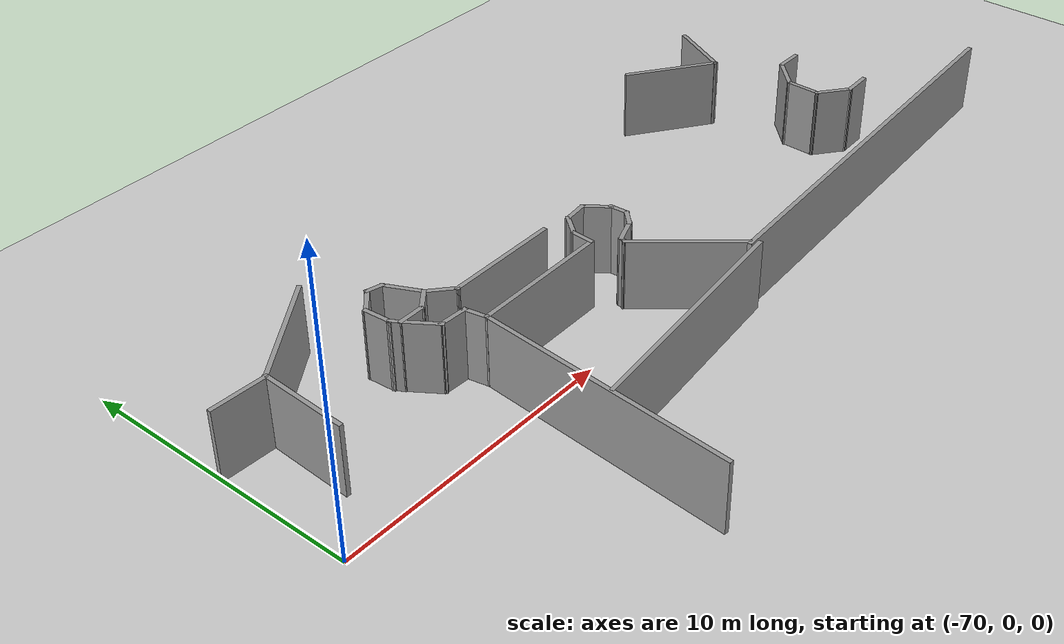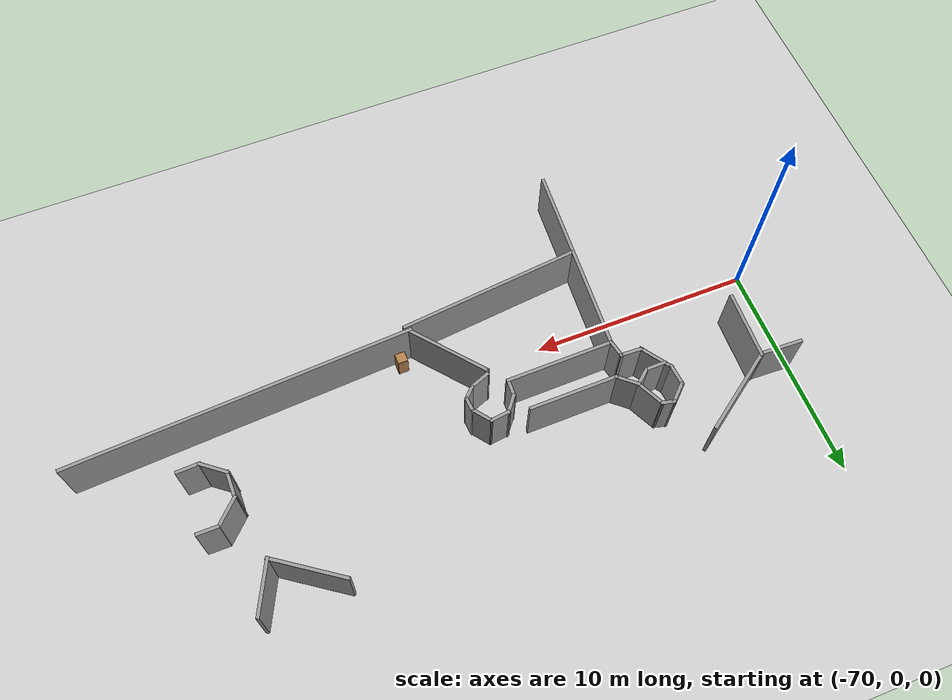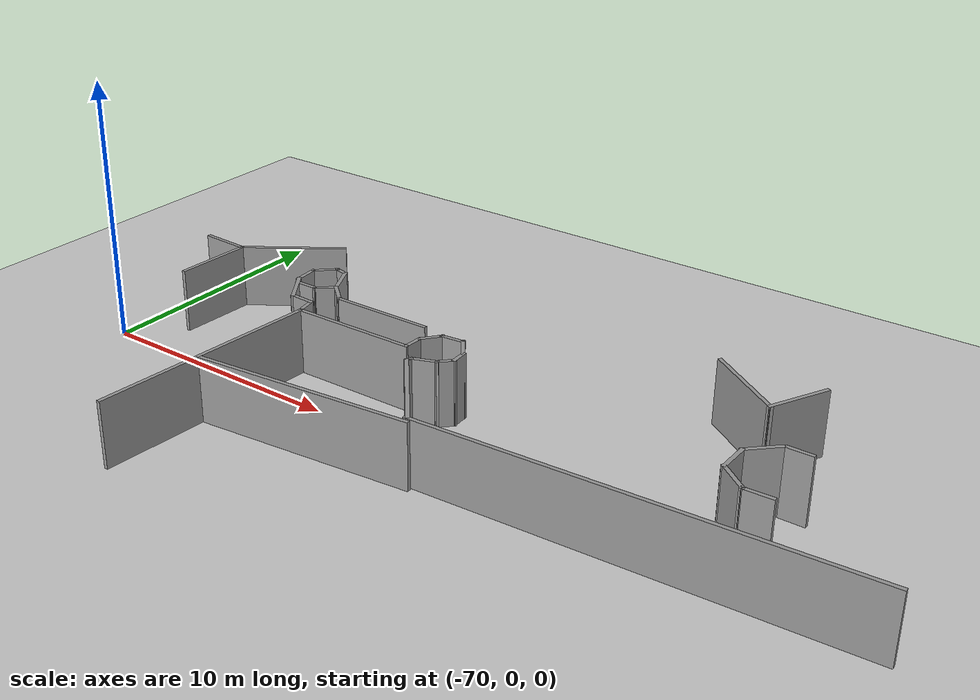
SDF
<sdf version="1.6">
 <world name="default">
  <model name="ground_plane">
   <static>1</static>
   <link name="link">
    <collision name="collision">
     <geometry><plane><normal>0 0 1</normal><size>100 100</size></plane></geometry>
     <surface><friction><ode><mu>100</mu><mu2>50</mu2></ode></friction></surface>
    </collision>
    <visual name="visual">
     <cast_shadows>0</cast_shadows>
     <geometry><plane><normal>0 0 1</normal><size>100 100</size></plane></geometry>
     <material>
      <script><uri>file://media/materials/scripts/gazebo.material</uri><name>Gazebo/Grey</name></script>
     </material>
    </visual>
   </link>
  </model>
  <model name="mall_new_reduce_size">
   <pose>-6.8092 7.5529 0 0 -0 0</pose>
   <link name="Wall_316">
    <collision name="Wall_316_Collision">
     <geometry><box><size>15.666 0.15 2.5</size></box></geometry>
     <pose>0 0 1.25 0 -0 0</pose>
    </collision>
    <visual name="Wall_316_Visual">
     <pose>0 0 1.25 0 -0 0</pose>
     <geometry><box><size>15.666 0.15 2.5</size></box></geometry>
     <material>
      <script><uri>file://media/materials/scripts/gazebo.material</uri><name>Gazebo/Grey</name></script>
      <ambient>1 1 1 1</ambient>
     </material>
     <meta><layer>0</layer></meta>
    </visual>
    <pose>-40.0804 -8.94499 0 0 -0 0.056231</pose>
   </link>
   <link name="Wall_344">
    <collision name="Wall_344_Collision">
     <geometry><box><size>1 0.15 2.5</size></box></geometry>
     <pose>0 0 1.25 0 -0 0</pose>
    </collision>
    <visual name="Wall_344_Visual">
     <pose>0 0 1.25 0 -0 0</pose>
     <geometry><box><size>1 0.15 2.5</size></box></geometry>
     <material>
      <script><uri>file://media/materials/scripts/gazebo.material</uri><name>Gazebo/Grey</name></script>
      <ambient>1 1 1 1</ambient>
     </material>
     <meta><layer>0</layer></meta>
    </visual>
    <pose>-37.269 -3.87943 0 0 -0 0</pose>
   </link>
   <link name="Wall_348">
    <collision name="Wall_348_Collision">
     <geometry><box><size>1.10725 0.15 2.5</size></box></geometry>
     <pose>0 0 1.25 0 -0 0</pose>
    </collision>
    <visual name="Wall_348_Visual">
     <pose>0 0 1.25 0 -0 0</pose>
     <geometry><box><size>1.10725 0.15 2.5</size></box></geometry>
     <material>
      <script><uri>file://media/materials/scripts/gazebo.material</uri><name>Gazebo/Grey</name></script>
      <ambient>1 1 1 1</ambient>
     </material>
     <meta><layer>0</layer></meta>
    </visual>
    <pose>-37.2547 -6.70987 0 0 -0 -3.10635</pose>
   </link>
   <link name="Wall_349">
    <collision name="Wall_349_Collision">
     <geometry><box><size>1.3639 0.15 2.5</size></box></geometry>
     <pose>0 0 1.25 0 -0 0</pose>
    </collision>
    <visual name="Wall_349_Visual">
     <pose>0 0 1.25 0 -0 0</pose>
     <geometry><box><size>1.3639 0.15 2.5</size></box></geometry>
     <material>
      <script><uri>file://media/materials/scripts/gazebo.material</uri><name>Gazebo/Grey</name></script>
      <ambient>1 1 1 1</ambient>
     </material>
     <meta><layer>0</layer></meta>
    </visual>
    <pose>-38.2094 -6.34212 0 0 -0 2.47312</pose>
   </link>
   <link name="Wall_350">
    <collision name="Wall_350_Collision">
     <geometry><box><size>1.28376 0.15 2.5</size></box></geometry>
     <pose>0 0 1.25 0 -0 0</pose>
    </collision>
    <visual name="Wall_350_Visual">
     <pose>0 0 1.25 0 -0 0</pose>
     <geometry><box><size>1.28376 0.15 2.5</size></box></geometry>
     <material>
      <script><uri>file://media/materials/scripts/gazebo.material</uri><name>Gazebo/Grey</name></script>
      <ambient>1 1 1 1</ambient>
     </material>
     <meta><layer>0</layer></meta>
    </visual>
    <pose>-38.673 -5.39908 0 0 -0 1.56336</pose>
   </link>
   <link name="Wall_351">
    <collision name="Wall_351_Collision">
     <geometry><box><size>1.42952 0.15 2.5</size></box></geometry>
     <pose>0 0 1.25 0 -0 0</pose>
    </collision>
    <visual name="Wall_351_Visual">
     <pose>0 0 1.25 0 -0 0</pose>
     <geometry><box><size>1.42952 0.15 2.5</size></box></geometry>
     <material>
      <script><uri>file://media/materials/scripts/gazebo.material</uri><name>Gazebo/Grey</name></script>
      <ambient>1 1 1 1</ambient>
     </material>
     <meta><layer>0</layer></meta>
    </visual>
    <pose>-38.2264 -4.36991 0 0 -0 0.78871</pose>
   </link>
   <link name="Wall_366">
    <collision name="Wall_366_Collision">
     <geometry><box><size>3.45516 0.15 2.5</size></box></geometry>
     <pose>0 0 1.25 0 -0 0</pose>
    </collision>
    <visual name="Wall_366_Visual">
     <pose>0 0 1.25 0 -0 0</pose>
     <geometry><box><size>3.45516 0.15 2.5</size></box></geometry>
     <material>
      <script><uri>file://media/materials/scripts/gazebo.material</uri><name>Gazebo/Grey</name></script>
      <ambient>1 1 1 1</ambient>
     </material>
     <meta><layer>0</layer></meta>
    </visual>
    <pose>-40.4877 -0.988988 0 0 -0 -0.613962</pose>
   </link>
   <link name="Wall_367">
    <collision name="Wall_367_Collision">
     <geometry><box><size>2.46444 0.15 2.5</size></box></geometry>
     <pose>0 0 1.25 0 -0 0</pose>
    </collision>
    <visual name="Wall_367_Visual">
     <pose>0 0 1.25 0 -0 0</pose>
     <geometry><box><size>2.46444 0.15 2.5</size></box></geometry>
     <material>
      <script><uri>file://media/materials/scripts/gazebo.material</uri><name>Gazebo/Grey</name></script>
      <ambient>1 1 1 1</ambient>
     </material>
     <meta><layer>0</layer></meta>
    </visual>
    <pose>-38.6407 -0.899676 0 0 -0 1.11954</pose>
   </link>
   <link name="Wall_401">
    <collision name="Wall_401_Collision">
     <geometry><box><size>8.88079 0.15 2.5</size></box></geometry>
     <pose>0 0 1.25 0 -0 0</pose>
    </collision>
    <visual name="Wall_401_Visual">
     <pose>0 0 1.25 0 -0 0</pose>
     <geometry><box><size>8.88079 0.15 2.5</size></box></geometry>
     <material>
      <script><uri>file://media/materials/scripts/gazebo.material</uri><name>Gazebo/Grey</name></script>
      <ambient>1 1 1 1</ambient>
     </material>
     <meta><layer>0</layer></meta>
    </visual>
    <pose>-55.8835 -10.0474 0 0 -0 1.50433</pose>
   </link>
   <link name="Wall_402">
    <collision name="Wall_402_Collision">
     <geometry><box><size>0.897348 0.15 2.5</size></box></geometry>
     <pose>0 0 1.25 0 -0 0</pose>
    </collision>
    <visual name="Wall_402_Visual">
     <pose>0 0 1.25 0 -0 0</pose>
     <geometry><box><size>0.897348 0.15 2.5</size></box></geometry>
     <material>
      <script><uri>file://media/materials/scripts/gazebo.material</uri><name>Gazebo/Grey</name></script>
      <ambient>1 1 1 1</ambient>
     </material>
     <meta><layer>0</layer></meta>
    </visual>
    <pose>-55.6756 -5.31366 0 0 -0 1.76181</pose>
   </link>
   <link name="Wall_403">
    <collision name="Wall_403_Collision">
     <geometry><box><size>1.05205 0.15 2.5</size></box></geometry>
     <pose>0 0 1.25 0 -0 0</pose>
    </collision>
    <visual name="Wall_403_Visual">
     <pose>0 0 1.25 0 -0 0</pose>
     <geometry><box><size>1.05205 0.15 2.5</size></box></geometry>
     <material>
      <script><uri>file://media/materials/scripts/gazebo.material</uri><name>Gazebo/Grey</name></script>
      <ambient>1 1 1 1</ambient>
     </material>
     <meta><layer>0</layer></meta>
    </visual>
    <pose>-56.1975 -4.94175 0 0 -0 3.09776</pose>
   </link>
   <link name="Wall_404">
    <collision name="Wall_404_Collision">
     <geometry><box><size>1.6486 0.15 2.5</size></box></geometry>
     <pose>0 0 1.25 0 -0 0</pose>
    </collision>
    <visual name="Wall_404_Visual">
     <pose>0 0 1.25 0 -0 0</pose>
     <geometry><box><size>1.6486 0.15 2.5</size></box></geometry>
     <material>
      <script><uri>file://media/materials/scripts/gazebo.material</uri><name>Gazebo/Grey</name></script>
      <ambient>1 1 1 1</ambient>
     </material>
     <meta><layer>0</layer></meta>
    </visual>
    <pose>-57.0705 -4.31764 0 0 -0 2.16924</pose>
   </link>
   <link name="Wall_405">
    <collision name="Wall_405_Collision">
     <geometry><box><size>1.04728 0.15 2.5</size></box></geometry>
     <pose>0 0 1.25 0 -0 0</pose>
    </collision>
    <visual name="Wall_405_Visual">
     <pose>0 0 1.25 0 -0 0</pose>
     <geometry><box><size>1.04728 0.15 2.5</size></box></geometry>
     <material>
      <script><uri>file://media/materials/scripts/gazebo.material</uri><name>Gazebo/Grey</name></script>
      <ambient>1 1 1 1</ambient>
     </material>
     <meta><layer>0</layer></meta>
    </visual>
    <pose>-57.5295 -3.26618 0 0 -0 1.65307</pose>
   </link>
   <link name="Wall_406">
    <collision name="Wall_406_Collision">
     <geometry><box><size>1.06244 0.15 2.5</size></box></geometry>
     <pose>0 0 1.25 0 -0 0</pose>
    </collision>
    <visual name="Wall_406_Visual">
     <pose>0 0 1.25 0 -0 0</pose>
     <geometry><box><size>1.06244 0.15 2.5</size></box></geometry>
     <material>
      <script><uri>file://media/materials/scripts/gazebo.material</uri><name>Gazebo/Grey</name></script>
      <ambient>1 1 1 1</ambient>
     </material>
     <meta><layer>0</layer></meta>
    </visual>
    <pose>-57.2204 -2.50531 0 0 -0 0.758329</pose>
   </link>
   <link name="Wall_407">
    <collision name="Wall_407_Collision">
     <geometry><box><size>0.639841 0.15 2.5</size></box></geometry>
     <pose>0 0 1.25 0 -0 0</pose>
    </collision>
    <visual name="Wall_407_Visual">
     <pose>0 0 1.25 0 -0 0</pose>
     <geometry><box><size>0.639841 0.15 2.5</size></box></geometry>
     <material>
      <script><uri>file://media/materials/scripts/gazebo.material</uri><name>Gazebo/Grey</name></script>
      <ambient>1 1 1 1</ambient>
     </material>
     <meta><layer>0</layer></meta>
    </visual>
    <pose>-56.6521 -2.25288 0 0 -0 -0.253027</pose>
   </link>
   <link name="Wall_408">
    <collision name="Wall_408_Collision">
     <geometry><box><size>1.42721 0.15 2.5</size></box></geometry>
     <pose>0 0 1.25 0 -0 0</pose>
    </collision>
    <visual name="Wall_408_Visual">
     <pose>0 0 1.25 0 -0 0</pose>
     <geometry><box><size>1.42721 0.15 2.5</size></box></geometry>
     <material>
      <script><uri>file://media/materials/scripts/gazebo.material</uri><name>Gazebo/Grey</name></script>
      <ambient>1 1 1 1</ambient>
     </material>
     <meta><layer>0</layer></meta>
    </visual>
    <pose>-56.1375 -2.87459 0 0 -0 -1.12122</pose>
   </link>
   <link name="Wall_409">
    <collision name="Wall_409_Collision">
     <geometry><box><size>1.12501 0.15 2.5</size></box></geometry>
     <pose>0 0 1.25 0 -0 0</pose>
    </collision>
    <visual name="Wall_409_Visual">
     <pose>0 0 1.25 0 -0 0</pose>
     <geometry><box><size>1.12501 0.15 2.5</size></box></geometry>
     <material>
      <script><uri>file://media/materials/scripts/gazebo.material</uri><name>Gazebo/Grey</name></script>
      <ambient>1 1 1 1</ambient>
     </material>
     <meta><layer>0</layer></meta>
    </visual>
    <pose>-55.4949 -3.78767 0 0 -0 -0.724728</pose>
   </link>
   <link name="Wall_411">
    <collision name="Wall_411_Collision">
     <geometry><box><size>4.04883 0.15 2.5</size></box></geometry>
     <pose>0 0 1.25 0 -0 0</pose>
    </collision>
    <visual name="Wall_411_Visual">
     <pose>0 0 1.25 0 -0 0</pose>
     <geometry><box><size>4.04883 0.15 2.5</size></box></geometry>
     <material>
      <script><uri>file://media/materials/scripts/gazebo.material</uri><name>Gazebo/Grey</name></script>
      <ambient>1 1 1 1</ambient>
     </material>
     <meta><layer>0</layer></meta>
    </visual>
    <pose>-53.1806 -4.10085 0 0 -0 0.010101</pose>
   </link>
   <link name="Wall_417">
    <collision name="Wall_417_Collision">
     <geometry><box><size>0.945041 0.15 2.5</size></box></geometry>
     <pose>0 0 1.25 0 -0 0</pose>
    </collision>
    <visual name="Wall_417_Visual">
     <pose>0 0 1.25 0 -0 0</pose>
     <geometry><box><size>0.945041 0.15 2.5</size></box></geometry>
     <material>
      <script><uri>file://media/materials/scripts/gazebo.material</uri><name>Gazebo/Grey</name></script>
      <ambient>1 1 1 1</ambient>
     </material>
     <meta><layer>0</layer></meta>
    </visual>
    <pose>-56.1664 -3.71764 0 0 -0 -2.4512</pose>
   </link>
   <link name="Wall_418">
    <collision name="Wall_418_Collision">
     <geometry><box><size>0.981722 0.15 2.5</size></box></geometry>
     <pose>0 0 1.25 0 -0 0</pose>
    </collision>
    <visual name="Wall_418_Visual">
     <pose>0 0 1.25 0 -0 0</pose>
     <geometry><box><size>0.981722 0.15 2.5</size></box></geometry>
     <material>
      <script><uri>file://media/materials/scripts/gazebo.material</uri><name>Gazebo/Grey</name></script>
      <ambient>1 1 1 1</ambient>
     </material>
     <meta><layer>0</layer></meta>
    </visual>
    <pose>-56.8887 -3.96587 0 0 -0 -3.13011</pose>
   </link>
   <link name="Wall_427">
    <collision name="Wall_427_Collision">
     <geometry><box><size>3.12833 0.15 2.5</size></box></geometry>
     <pose>0 0 1.25 0 -0 0</pose>
    </collision>
    <visual name="Wall_427_Visual">
     <pose>0 0 1.25 0 -0 0</pose>
     <geometry><box><size>3.12833 0.15 2.5</size></box></geometry>
     <material>
      <script><uri>file://media/materials/scripts/gazebo.material</uri><name>Gazebo/Grey</name></script>
      <ambient>1 1 1 1</ambient>
     </material>
     <meta><layer>0</layer></meta>
    </visual>
    <pose>-61.3717 -4.31042 0 0 -0 1.53172</pose>
   </link>
   <link name="Wall_428">
    <collision name="Wall_428_Collision">
     <geometry><box><size>4.18793 0.15 2.5</size></box></geometry>
     <pose>0 0 1.25 0 -0 0</pose>
    </collision>
    <visual name="Wall_428_Visual">
     <pose>0 0 1.25 0 -0 0</pose>
     <geometry><box><size>4.18793 0.15 2.5</size></box></geometry>
     <material>
      <script><uri>file://media/materials/scripts/gazebo.material</uri><name>Gazebo/Grey</name></script>
      <ambient>1 1 1 1</ambient>
     </material>
     <meta><layer>0</layer></meta>
    </visual>
    <pose>-59.6593 -1.6746 0 0 -0 0.610537</pose>
   </link>
   <link name="Wall_431">
    <collision name="Wall_431_Collision">
     <geometry><box><size>1.99069 0.15 2.5</size></box></geometry>
     <pose>0 0 1.25 0 -0 0</pose>
    </collision>
    <visual name="Wall_431_Visual">
     <pose>0 0 1.25 0 -0 0</pose>
     <geometry><box><size>1.99069 0.15 2.5</size></box></geometry>
     <material>
      <script><uri>file://media/materials/scripts/gazebo.material</uri><name>Gazebo/Grey</name></script>
      <ambient>1 1 1 1</ambient>
     </material>
     <meta><layer>0</layer></meta>
    </visual>
    <pose>-62.246 -2.82159 0 0 -0 -0.042156</pose>
   </link>
   <link name="Wall_434">
    <collision name="Wall_434_Collision">
     <geometry><box><size>8.39063 0.15 2.5</size></box></geometry>
     <pose>0 0 1.25 0 -0 0</pose>
    </collision>
    <visual name="Wall_434_Visual">
     <pose>0 0 1.25 0 -0 0</pose>
     <geometry><box><size>8.39063 0.15 2.5</size></box></geometry>
     <material>
      <script><uri>file://media/materials/scripts/gazebo.material</uri><name>Gazebo/Grey</name></script>
      <ambient>1 1 1 1</ambient>
     </material>
     <meta><layer>0</layer></meta>
    </visual>
    <pose>-51.7356 -9.99206 0 0 -0 0.100443</pose>
   </link>
   <link name="Wall_437">
    <collision name="Wall_437_Collision">
     <geometry><box><size>4.93367 0.15 2.5</size></box></geometry>
     <pose>0 0 1.25 0 -0 0</pose>
    </collision>
    <visual name="Wall_437_Visual">
     <pose>0 0 1.25 0 -0 0</pose>
     <geometry><box><size>4.93367 0.15 2.5</size></box></geometry>
     <material>
      <script><uri>file://media/materials/scripts/gazebo.material</uri><name>Gazebo/Grey</name></script>
      <ambient>1 1 1 1</ambient>
     </material>
     <meta><layer>0</layer></meta>
    </visual>
    <pose>-53.2131 -5.64679 0 0 -0 0.01411</pose>
   </link>
   <link name="Wall_438">
    <collision name="Wall_438_Collision">
     <geometry><box><size>0.856294 0.15 2.5</size></box></geometry>
     <pose>0 0 1.25 0 -0 0</pose>
    </collision>
    <visual name="Wall_438_Visual">
     <pose>0 0 1.25 0 -0 0</pose>
     <geometry><box><size>0.856294 0.15 2.5</size></box></geometry>
     <material>
      <script><uri>file://media/materials/scripts/gazebo.material</uri><name>Gazebo/Grey</name></script>
      <ambient>1 1 1 1</ambient>
     </material>
     <meta><layer>0</layer></meta>
    </visual>
    <pose>-50.8031 -5.24109 0 0 -0 1.51867</pose>
   </link>
   <link name="Wall_439">
    <collision name="Wall_439_Collision">
     <geometry><box><size>0.969231 0.15 2.5</size></box></geometry>
     <pose>0 0 1.25 0 -0 0</pose>
    </collision>
    <visual name="Wall_439_Visual">
     <pose>0 0 1.25 0 -0 0</pose>
     <geometry><box><size>0.969231 0.15 2.5</size></box></geometry>
     <material>
      <script><uri>file://media/materials/scripts/gazebo.material</uri><name>Gazebo/Grey</name></script>
      <ambient>1 1 1 1</ambient>
     </material>
     <meta><layer>0</layer></meta>
    </visual>
    <pose>-50.5308 -4.57665 0 0 -0 0.902175</pose>
   </link>
   <link name="Wall_440">
    <collision name="Wall_440_Collision">
     <geometry><box><size>0.946307 0.15 2.5</size></box></geometry>
     <pose>0 0 1.25 0 -0 0</pose>
    </collision>
    <visual name="Wall_440_Visual">
     <pose>0 0 1.25 0 -0 0</pose>
     <geometry><box><size>0.946307 0.15 2.5</size></box></geometry>
     <material>
      <script><uri>file://media/materials/scripts/gazebo.material</uri><name>Gazebo/Grey</name></script>
      <ambient>1 1 1 1</ambient>
     </material>
     <meta><layer>0</layer></meta>
    </visual>
    <pose>-49.8906 -4.222 0 0 -0 0.1079</pose>
   </link>
   <link name="Wall_441">
    <collision name="Wall_441_Collision">
     <geometry><box><size>1.05702 0.15 2.5</size></box></geometry>
     <pose>0 0 1.25 0 -0 0</pose>
    </collision>
    <visual name="Wall_441_Visual">
     <pose>0 0 1.25 0 -0 0</pose>
     <geometry><box><size>1.05702 0.15 2.5</size></box></geometry>
     <material>
      <script><uri>file://media/materials/scripts/gazebo.material</uri><name>Gazebo/Grey</name></script>
      <ambient>1 1 1 1</ambient>
     </material>
     <meta><layer>0</layer></meta>
    </visual>
    <pose>-49.2136 -4.53268 0 0 -0 -0.928706</pose>
   </link>
   <link name="Wall_442">
    <collision name="Wall_442_Collision">
     <geometry><box><size>0.712069 0.15 2.5</size></box></geometry>
     <pose>0 0 1.25 0 -0 0</pose>
    </collision>
    <visual name="Wall_442_Visual">
     <pose>0 0 1.25 0 -0 0</pose>
     <geometry><box><size>0.712069 0.15 2.5</size></box></geometry>
     <material>
      <script><uri>file://media/materials/scripts/gazebo.material</uri><name>Gazebo/Grey</name></script>
      <ambient>1 1 1 1</ambient>
     </material>
     <meta><layer>0</layer></meta>
    </visual>
    <pose>-48.9034 -5.1666 0 0 -0 -1.50212</pose>
   </link>
   <link name="Wall_443">
    <collision name="Wall_443_Collision">
     <geometry><box><size>0.745598 0.15 2.5</size></box></geometry>
     <pose>0 0 1.25 0 -0 0</pose>
    </collision>
    <visual name="Wall_443_Visual">
     <pose>0 0 1.25 0 -0 0</pose>
     <geometry><box><size>0.745598 0.15 2.5</size></box></geometry>
     <material>
      <script><uri>file://media/materials/scripts/gazebo.material</uri><name>Gazebo/Grey</name></script>
      <ambient>1 1 1 1</ambient>
     </material>
     <meta><layer>0</layer></meta>
    </visual>
    <pose>-49.0898 -5.67195 0 0 -0 -2.3333</pose>
   </link>
   <link name="Wall_444">
    <collision name="Wall_444_Collision">
     <geometry><box><size>1.0299 0.15 2.5</size></box></geometry>
     <pose>0 0 1.25 0 -0 0</pose>
    </collision>
    <visual name="Wall_444_Visual">
     <pose>0 0 1.25 0 -0 0</pose>
     <geometry><box><size>1.0299 0.15 2.5</size></box></geometry>
     <material>
      <script><uri>file://media/materials/scripts/gazebo.material</uri><name>Gazebo/Grey</name></script>
      <ambient>1 1 1 1</ambient>
     </material>
     <meta><layer>0</layer></meta>
    </visual>
    <pose>-49.6964 -6.0455 0 0 -0 -2.77375</pose>
   </link>
   <link name="Wall_445">
    <collision name="Wall_445_Collision">
     <geometry><box><size>0.341024 0.15 2.5</size></box></geometry>
     <pose>0 0 1.25 0 -0 0</pose>
    </collision>
    <visual name="Wall_445_Visual">
     <pose>0 0 1.25 0 -0 0</pose>
     <geometry><box><size>0.341024 0.15 2.5</size></box></geometry>
     <material>
      <script><uri>file://media/materials/scripts/gazebo.material</uri><name>Gazebo/Grey</name></script>
      <ambient>1 1 1 1</ambient>
     </material>
     <meta><layer>0</layer></meta>
    </visual>
    <pose>-50.1426 -6.30525 0 0 -0 -1.8466</pose>
   </link>
   <link name="Wall_446">
    <collision name="Wall_446_Collision">
     <geometry><box><size>3.93279 0.15 2.5</size></box></geometry>
     <pose>0 0 1.25 0 -0 0</pose>
    </collision>
    <visual name="Wall_446_Visual">
     <pose>0 0 1.25 0 -0 0</pose>
     <geometry><box><size>3.93279 0.15 2.5</size></box></geometry>
     <material>
      <script><uri>file://media/materials/scripts/gazebo.material</uri><name>Gazebo/Grey</name></script>
      <ambient>1 1 1 1</ambient>
     </material>
     <meta><layer>0</layer></meta>
    </visual>
    <pose>-48.9826 -7.86273 0 0 -0 -0.886501</pose>
   </link>
   <static>1</static>
  </model>
  <model name="cabinet_3">
   <static>1</static>
   <link name="cabinet_bottom_plate">
    <inertial>
     <pose>0 0 -1 0 -0 0</pose>
     <inertia><ixx>2.05</ixx><ixy>0</ixy><ixz>0</ixz><iyy>2.05</iyy><iyz>0</iyz><izz>2.05</izz></inertia>
     <mass>25</mass>
    </inertial>
    <collision name="cabinet_bottom_plate_geom">
     <pose>0 0 0.01 0 -0 0</pose>
     <geometry><box><size>0.45 0.45 0.02</size></box></geometry>
    </collision>
    <visual name="cabinet_bottom_plate_geom_visual">
     <pose>0 0 0.01 0 -0 0</pose>
     <geometry><box><size>0.45 0.45 0.02</size></box></geometry>
     <material>
      <script><uri>file://media/materials/scripts/gazebo.material</uri><name>Gazebo/Wood</name></script>
     </material>
    </visual>
    <collision name="cabinet_bottom_plate_geom_cabinet_back_plate">
     <pose>0.235 0 0.51 0 -0 0</pose>
     <geometry><box><size>0.02 0.45 1.02</size></box></geometry>
    </collision>
    <visual name="cabinet_bottom_plate_geom_cabinet_back_plate_visual">
     <pose>0.235 0 0.51 0 -0 0</pose>
     <geometry><box><size>0.02 0.45 1.02</size></box></geometry>
     <material>
      <script><uri>file://media/materials/scripts/gazebo.material</uri><name>Gazebo/Wood</name></script>
     </material>
    </visual>
    <collision name="cabinet_bottom_plate_geom_cabinet_left_plate">
     <pose>0 0.235 0.51 0 -0 0</pose>
     <geometry><box><size>0.45 0.02 1.02</size></box></geometry>
    </collision>
    <visual name="cabinet_bottom_plate_geom_cabinet_left_plate_visual">
     <pose>0 0.235 0.51 0 -0 0</pose>
     <geometry><box><size>0.45 0.02 1.02</size></box></geometry>
     <material>
      <script><uri>file://media/materials/scripts/gazebo.material</uri><name>Gazebo/Wood</name></script>
     </material>
    </visual>
    <collision name="cabinet_bottom_plate_geom_cabinet_middle_plate">
     <pose>0 0 0.51 0 -0 0</pose>
     <geometry><box><size>0.45 0.45 0.02</size></box></geometry>
    </collision>
    <visual name="cabinet_bottom_plate_geom_cabinet_middle_plate_visual">
     <pose>0 0 0.51 0 -0 0</pose>
     <geometry><box><size>0.45 0.45 0.02</size></box></geometry>
     <material>
      <script><uri>file://media/materials/scripts/gazebo.material</uri><name>Gazebo/Wood</name></script>
     </material>
    </visual>
    <collision name="cabinet_bottom_plate_geom_cabinet_right_plate">
     <pose>0 -0.235 0.51 0 -0 0</pose>
     <geometry><box><size>0.45 0.02 1.02</size></box></geometry>
    </collision>
    <visual name="cabinet_bottom_plate_geom_cabinet_right_plate_visual">
     <pose>0 -0.235 0.51 0 -0 0</pose>
     <geometry><box><size>0.45 0.02 1.02</size></box></geometry>
     <material>
      <script><uri>file://media/materials/scripts/gazebo.material</uri><name>Gazebo/Wood</name></script>
     </material>
    </visual>
    <collision name="cabinet_bottom_plate_geom_cabinet_top_plate">
     <pose>0 0 1.01 0 -0 0</pose>
     <geometry><box><size>0.45 0.45 0.02</size></box></geometry>
    </collision>
    <visual name="cabinet_bottom_plate_geom_cabinet_top_plate_visual">
     <pose>0 0 1.01 0 -0 0</pose>
     <geometry><box><size>0.45 0.45 0.02</size></box></geometry>
     <material>
      <script><uri>file://media/materials/scripts/gazebo.material</uri><name>Gazebo/Wood</name></script>
     </material>
    </visual>
   </link>
   <pose>-53.9926 -1.41288 0 0 -0 0</pose>
  </model>
 </world>
</sdf>
